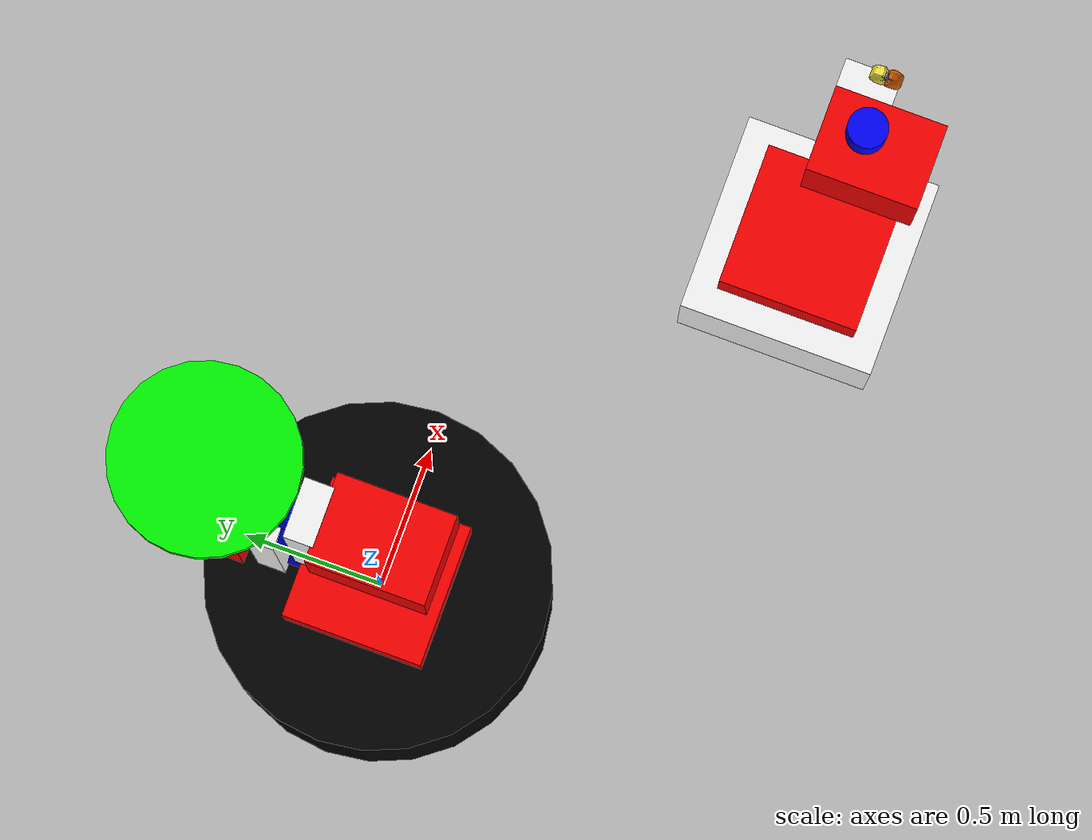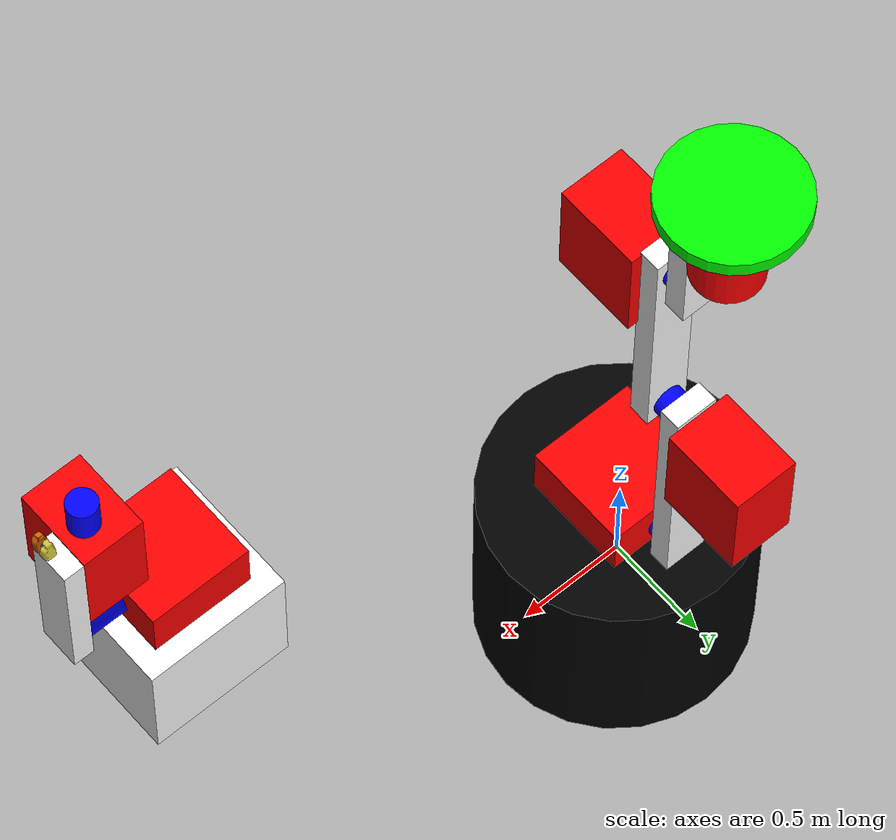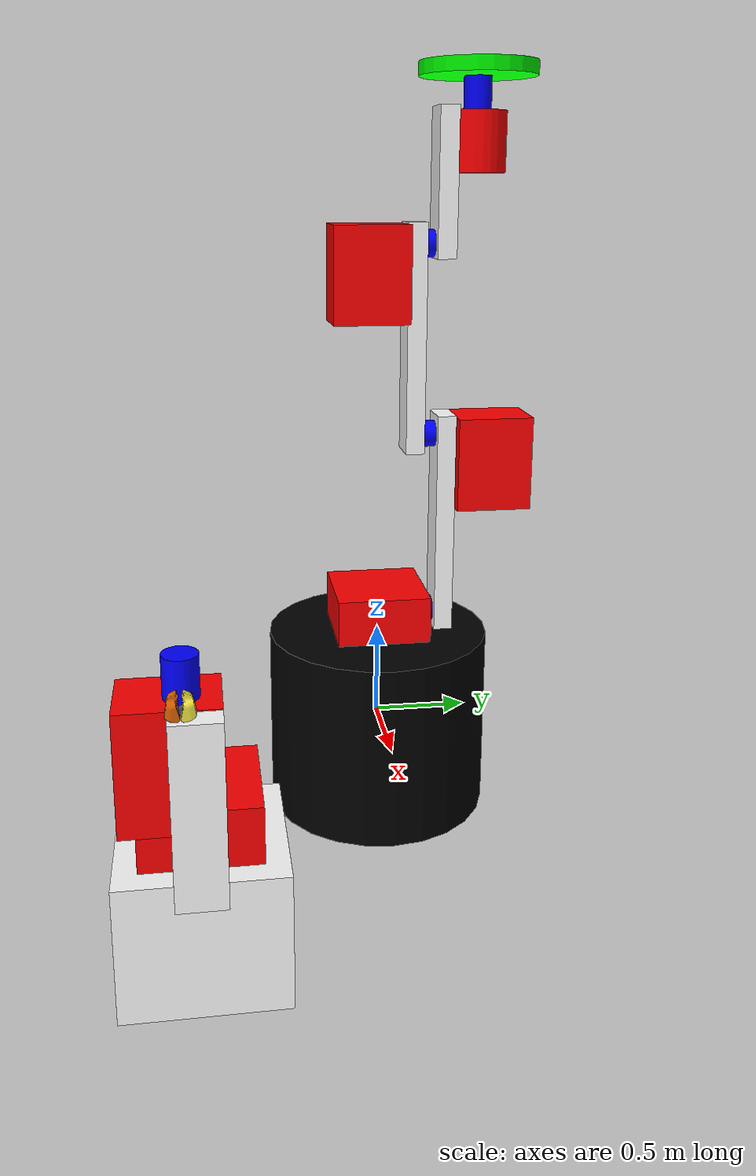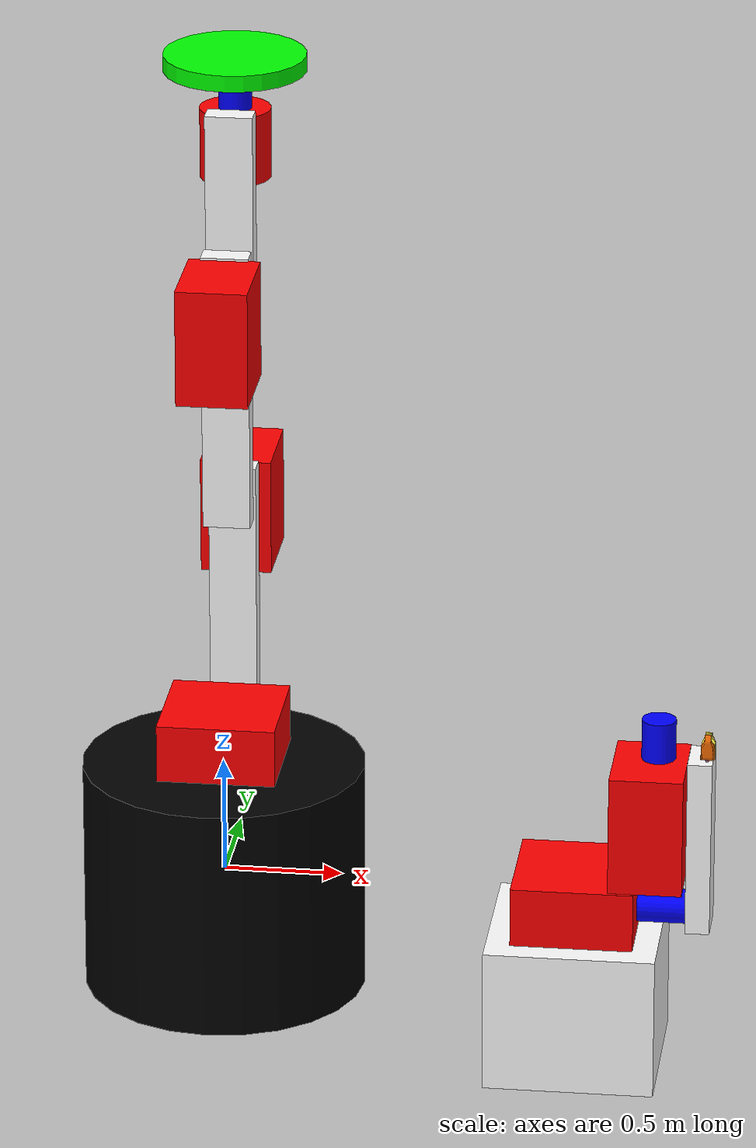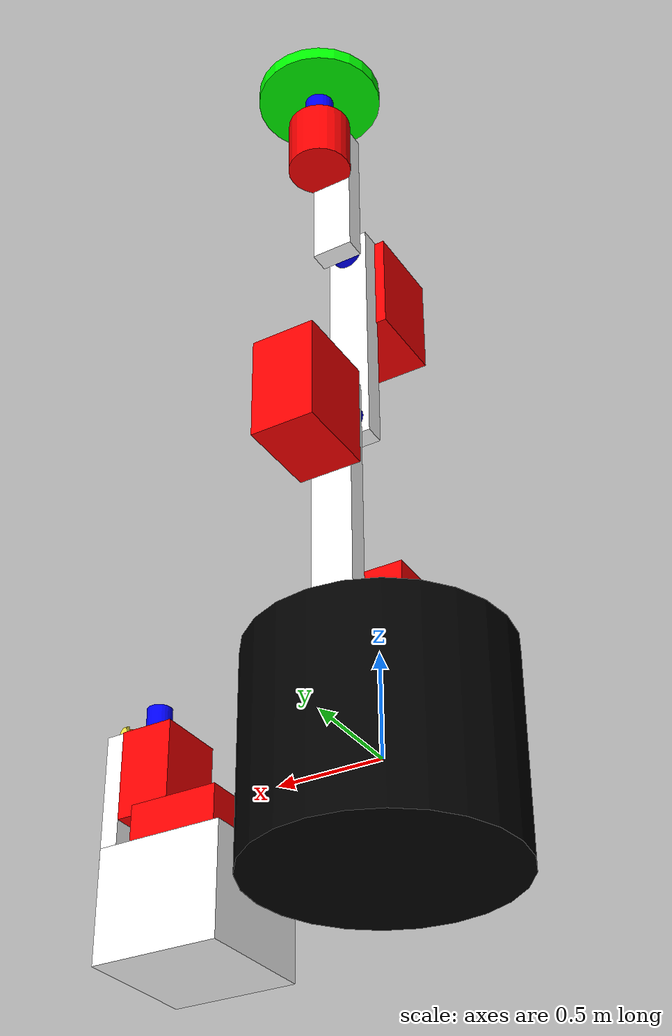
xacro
<!-- arm2.xacro:- has inertia, collision properties for links for simulation in gazebo -->
<?xml version="1.0" ?>

<robot name="arm" xmlns:xacro="http://www.ros.org/wiki/xacro">

<material name="blue">
        <color rgba="0 0 1 1"/>
    </material>
    <material name="red">
        <color rgba="1 0 0 1"/>
    </material>
    <material name="green">
        <color rgba="0 1 0 1"/>
    </material>
    <material name="black">
        <color rgba="0 0 0 1"/>
    </material>
    <material name="white">
        <color rgba="1 1 1 1"/>
    </material>

    <link name="base">
    <inertial>
	    <mass value="1"/>
	    <origin rpy="0 0 0" xyz="0 0 0"	/> 	<!--same as origin of link-->
	    <inertia ixx="0.1733" ixy="0" ixz="0" iyy="0.1733" iyz="0" izz="0.18"/>
    </inertial>
    <collision>
        <origin rpy="0 0 0" xyz="0 0 0"/>
            <geometry>
                <cylinder radius="0.6" length="1"/>
            </geometry>
            <material name="black"/>
    </collision>
        <visual>
            <origin rpy="0 0 0" xyz="0 0 0"/>
            <geometry>
                <cylinder radius="0.6" length="1"/>
            </geometry>
            <material name="black"/>
        </visual>
    </link>

    <joint name="base__servo1" type="revolute">
        <axis xyz="0 0 1" />
        <origin rpy="0 0 0" xyz="0 0 0.5"/>
        <limit effort="1000" lower="-1.57" upper="1.57" velocity="0.5" />
        <parent link="base"/>
        <child link="servo1"/>
    </joint>

    <link name="servo1">
    <inertial>
	    <mass value="0.250"/>
	    <origin rpy="0 0 0" xyz="0 0 0.1"	/> 	<!--same as origin of link-->
	    <inertia ixx="0.007833" ixy="0" ixz="0" iyy="0.007833" iyz="0" izz="0.01041" />
    </inertial>
        <collision>
            <origin rpy="0 0 0" xyz="0 0 0.1"/>
            <geometry>
                <box size="0.5 0.5 0.3"/>
            </geometry>
            <material name="red"/>
        </collision>
        <visual>
            <origin rpy="0 0 0" xyz="0 0 0.1"/>
            <geometry>
                <box size="0.5 0.5 0.3"/>
            </geometry>
            <material name="red"/>
        </visual>
    </link>

        <joint name="servo1_shaft1" type="revolute">
        <axis xyz="0 1 0" />
        <limit effort="1000" lower="-1.57" upper="1.57" velocity="0.5" />
        <origin rpy="0 0 0" xyz="0 0.15 0.1"/>
        <parent link="servo1"/>
        <child link="shaft1"/>
    </joint>

    <link name="shaft1">
    <inertial>
	    <mass value="0.050"/>
	    <origin rpy="0 0 0" xyz="0 0 0"	/> 	<!--same as origin of link-->
	    <inertia ixx="0.00041167" ixy="0" ixz="0" iyy="0.0001225" iyz="0" izz="0.00041167" />
    </inertial>
    <collision>
	<origin rpy="-1.57 0 0" xyz="0 0.1 0"/>
            <geometry>
                <cylinder radius="0.07" length="0.29"/>
            </geometry>
             <material name="blue"/>
    </collision>
        <visual>
            <origin rpy="-1.57 0 0" xyz="0 0.1 0"/>
            <geometry>
                <cylinder radius="0.07" length="0.29"/>
            </geometry>
             <material name="blue"/>
        </visual>
    </link>

    <joint name="shaft1_link1" type="fixed">
        <axis xyz="0 1 0" />
        <origin rpy="0 0 0" xyz="0 0.15 0"/>
        <parent link="shaft1"/>
        <child link="link1"/>
    </joint>

    <link name="link1">
    <inertial>
	    <mass value="0.100"/>
	    <origin rpy="0 0 0" xyz="0 0 0"	/> 	<!--same as origin of link-->
	    <inertia ixx="0.01208" ixy="0" ixz="0" iyy="0.01233" iyz="0" izz="0.00041667"/>
    </inertial>
    <collision>
	<origin rpy="0 0 0" xyz="0 0.05 0.51"/>
            <geometry>
                <box size="0.20 0.1 1.2"/>
            </geometry>
            <material name="white"/>
    </collision>
        <visual>
            <origin rpy="0 0 0" xyz="0 0.05 0.51"/>
            <geometry>
                <box size="0.20 0.1 1.2"/>
            </geometry>
            <material name="white"/>
        </visual>
    </link>

    <joint name="link1_servo2" type="fixed">
        <axis xyz="0 1 0" />
        <origin rpy="0 0 0" xyz="0 0.25 1.2"/>
        <parent link="link1"/>
        <child link="servo2"/>
    </joint>

    <link name="servo2">
    <inertial>
	    <mass value="0.250"/>
	    <origin rpy="0 0 0" xyz="0 0 0"	/> 	<!--same as origin of link-->
	    <inertia ixx="" ixy="0" ixz="0" iyy="" iyz="0" izz=""/>
    </inertial>
    <collision>
	<origin rpy="0 0 0" xyz="0 0.055 -.35"/>
            <geometry>
                <box size="0.3 0.40 0.5"/>
            </geometry>
            <material name="red"/>
    </collision>
        <visual>
            <origin rpy="0 0 0" xyz="0 0.055 -.35"/>
            <geometry>
                <box size="0.3 0.40 0.5"/>
            </geometry>
            <material name="red"/>
        </visual>
    </link>

    <joint name="servo2_shaft2" type="revolute">
        <axis xyz="0 1 0" />
        <limit effort="1000" lower="-1.57" upper="1.57" velocity="0.5" />
        <origin rpy="0 0 0" xyz="0 0.15 -0.20"/>
        <parent link="servo2"/>
        <child link="shaft2"/>
    </joint>

    <link name="shaft2">
    <inertial>
	    <mass value="0.050"/>
	    <origin rpy="0 0 0" xyz="0 0 0"	/> 	<!--same as origin of link-->
	    <inertia ixx="" ixy="0" ixz="0" iyy="" iyz="0" izz="" />
    </inertial>
    <collision>
	<origin rpy="-1.57 0 0" xyz="0 -0.40 0"/>
            <geometry>
                <cylinder radius="0.07" length="0.30"/>
            </geometry>
            <material name="blue"/>
    </collision>
        <visual>
            <origin rpy="-1.57 0 0" xyz="0 -0.40 0"/>
            <geometry>
                <cylinder radius="0.07" length="0.30"/>
            </geometry>
            <material name="blue"/>
        </visual>
    </link>

    <joint name="shaft2_link2" type="fixed">
        <axis xyz="0 1 0" />
        <origin rpy="0 0 0" xyz="0 -0.22 0"/>
        <parent link="shaft2"/>
        <child link="link2"/>
    </joint>

    <link name="link2">
    <inertial>
	    <mass value="0.100"/>
	    <origin rpy="0 0 0" xyz="0 0 0"	/> 	<!--same as origin of link-->
	    <inertia ixx="" ixy="0" ixz="0" iyy="" iyz="0" izz="" />
    </inertial>
    <collision>
	<origin rpy="0 0 0" xyz="0 -0.3 0.51"/>
            <geometry>
                <box size="0.20 0.1 1.2"/>
            </geometry>
            <material name="white"/>
    </collision>
        <visual>
            <origin rpy="0 0 0" xyz="0 -0.3 0.51"/>
            <geometry>
                <box size="0.20 0.1 1.2"/>
            </geometry>
            <material name="white"/>
        </visual>
    </link>

    <joint name="link2_servo3" type="fixed">
        <axis xyz="0 1 0" />
        <origin rpy="0 0 0" xyz="0 0 1.2"/>
        <parent link="link2"/>
        <child link="servo3"/>
    </joint>

    <link name="servo3">
    <inertial>
	    <mass value="0.250"/>
	    <origin rpy="0 0 0" xyz="0 0 0"	/> 	<!--same as origin of link-->
	    <inertia ixx="" ixy="0" ixz="0" iyy="" iyz="0" izz="" />
    </inertial>
    <collision>
	<origin rpy="0 0 0" xyz="0 -0.54 -.35"/>
            <geometry>
                <box size="0.3 0.40 0.5"/>
            </geometry>
            <material name="red"/>
    </collision>
        <visual>
            <origin rpy="0 0 0" xyz="0 -0.54 -.35"/>
            <geometry>
                <box size="0.3 0.40 0.5"/>
            </geometry>
            <material name="red"/>
        </visual>
    </link>

    <joint name="servo3_shaft3" type="revolute">
        <axis xyz="0 1 0" />
        <limit effort="1000" lower="-1.57" upper="1.57" velocity="0.5" />
        <origin rpy="0 0 0" xyz="0 0.15 -0.20"/>
        <parent link="servo3"/>
        <child link="shaft3"/>
    </joint>

    <link name="shaft3">
    <inertial>
	    <mass value="0.050"/>
	    <origin rpy="0 0 0" xyz="0 0 0"	/> 	<!--same as origin of link-->
	    <inertia ixx="" ixy="0" ixz="0" iyy="" iyz="0" izz="" />
    </inertial>
    <collision>
	<origin rpy="-1.57 0 0" xyz="0 -0.43 0"/>
            <geometry>
                <cylinder radius="0.07" length="0.30"/>
            </geometry>
            <material name="blue"/>
    </collision>
        <visual>
            <origin rpy="-1.57 0 0" xyz="0 -0.43 0"/>
            <geometry>
                <cylinder radius="0.07" length="0.30"/>
            </geometry>
            <material name="blue"/>
        </visual>
    </link>

    <joint name="shaft3_link3" type="fixed">
        <axis xyz="0 1 0" />
        <origin rpy="0 0 0" xyz="0 -0.22 0"/>
        <parent link="shaft3"/>
        <child link="link3"/>
    </joint>

    <link name="link3">
    <inertial>
	    <mass value="0.100"/>
	    <origin rpy="0 0 0" xyz="0 0 0"	/> 	<!--same as origin of link-->
	    <inertia ixx="" ixy="0" ixz="0" iyy="" iyz="0" izz="" />
    </inertial>
    <collision>
	<origin rpy="0 0 0" xyz="0 -0.08 0.3"/>
            <geometry>
                <box size="0.20 0.1 0.75"/>
            </geometry>
            <material name="white"/>
    </collision>
        <visual>
            <origin rpy="0 0 0" xyz="0 -0.08 0.3"/>
            <geometry>
                <box size="0.20 0.1 0.75"/>
            </geometry>
            <material name="white"/>
        </visual>
    </link>

    <joint name="link3_motor1" type="fixed">
        <axis xyz="0 0 1" />
        <origin rpy="0 0 0" xyz="0 -0.22 0"/>
        <parent link="link3"/>
        <child link="motor1"/>
    </joint>

    <link name="motor1">
    <inertial>
	    <mass value="0.200"/>
	    <origin rpy="0 0 0" xyz="0 0 0"	/> 	<!--same as origin of link-->
	    <inertia ixx="" ixy="0" ixz="0" iyy="" iyz="0" izz="" />
    </inertial>
    <collision>
	 <origin rpy="0 0 0" xyz="0 0.3 0.5"/>
            <geometry>
                <cylinder radius="0.15" length="0.30"/>
            </geometry>
            <material name="red"/>
    </collision>
        <visual>
            <origin rpy="0 0 0" xyz="0 0.3 0.5"/>
            <geometry>
                <cylinder radius="0.15" length="0.30"/>
            </geometry>
            <material name="red"/>
        </visual>
    </link>

    <joint name="motor1_shaft4" type="revolute">
        <axis xyz="0 0 1" />
        <limit effort="1000" lower="-1.57" upper="1.57" velocity="0.5" />
        <origin rpy="0 0 0" xyz="0 0.3 -0.20"/>
        <parent link="motor1"/>
        <child link="shaft4"/>
    </joint>

    <link name="shaft4">
    <inertial>
	    <mass value="0.050"/>
	    <origin rpy="0 0 0" xyz="0 0 0"	/> 	<!--same as origin of link-->
	    <inertia ixx="" ixy="0" ixz="0" iyy="" iyz="0" izz="" />
    </inertial>
    <collision>
	<origin rpy="0 0 0" xyz="0 0 .9"/>
            <geometry>
                <cylinder radius="0.07" length="0.30"/>
            </geometry>
            <material name="blue"/>
    </collision>
        <visual>
            <origin rpy="0 0 0" xyz="0 0 .9"/>
            <geometry>
                <cylinder radius="0.07" length="0.30"/>
            </geometry>
            <material name="blue"/>
        </visual>
    </link>

    <joint name="shaft4_brush" type="fixed">
        <axis xyz="0 0 1" />
        <origin rpy="0 0 0" xyz="0 0 0"/>
        <parent link="shaft4"/>
        <child link="brush"/>
    </joint>

    <link name="brush">
    <inertial>
	    <mass value="0.100"/>
	    <origin rpy="0 0 0" xyz="0 0 0"	/> 	<!--same as origin of link-->
	    <inertia ixx="" ixy="0" ixz="0" iyy="" iyz="0" izz="" />
    </inertial>
    <collision>
	<origin rpy="0 0 0" xyz="0 0 1.05"/>
            <geometry>
                <cylinder radius="0.3" length="0.07"/>
            </geometry>
            <material name="green"/>
    </collision>
        <visual>
            <origin rpy="0 0 0" xyz="0 0 1.05"/>
            <geometry>
                <cylinder radius="0.3" length="0.07"/>
            </geometry>
            <material name="green"/>
        </visual>
    </link>

<!--robot arm 2 description from here-->
    <joint name="base__base2" type="fixed">
        <axis xyz="1 0 0" />
        <origin rpy="0 0 0" xyz="0 0 0"/>
        <parent link="base"/>
        <child link="base2"/>
    </joint>

    <link name="base2">
    <inertial>
	    <mass value="0.600"/>
	    <origin rpy="0 0 0" xyz="0 0 0"	/> 	<!--same as origin of link-->
	    <inertia ixx="" ixy="0" ixz="0" iyy="" iyz="0" izz="" />
    </inertial>
    <collision>
	<origin rpy="0 0 0" xyz="1.6 -1 0"/>
            <geometry>
                <box size=".7 .7 .6"/>
            </geometry>
            <material name="white"/>
    </collision>
        <visual>
            <origin rpy="0 0 0" xyz="1.6 -1 0"/>
            <geometry>
                <box size=".7 .7 .6"/>
            </geometry>
            <material name="white"/>
        </visual>
    </link>

    <joint name="base2__servo2.1" type="revolute">
        <axis xyz="0 0 1" />
        <origin rpy="0 0 0" xyz="1.6 -1 0.3"/>
        <limit effort="1000" lower="-1.57" upper="1.57" velocity="0.5" />
        <parent link="base2"/>
        <child link="servo2.1"/>
    </joint>

    <link name="servo2.1">
    <inertial>
	    <mass value="0.250"/>
	    <origin rpy="0 0 0" xyz="0 0 0"	/> 	<!--same as origin of link-->
	    <inertia ixx="" ixy="0" ixz="0" iyy="" iyz="0" izz="" />
    </inertial>
    <collision>
	<origin rpy="0 0 0" xyz="0 0 0.1"/>
            <geometry>
                <box size="0.5 0.5 0.3"/>
            </geometry>
            <material name="red"/>
    </collision>
        <visual>
            <origin rpy="0 0 0" xyz="0 0 0.1"/>
            <geometry>
                <box size="0.5 0.5 0.3"/>
            </geometry>
            <material name="red"/>
        </visual>
    </link>

    <joint name="servo2.1__shaft2.1" type="revolute">
        <axis xyz="1 0 0" />
        <origin rpy="0 0 0" xyz="0.4 0 0.10"/>
        <limit effort="1000" lower="-1.57" upper="1.57" velocity="0.5" />
        <parent link="servo2.1"/>
        <child link="shaft2.1"/>
    </joint>

    <link name="shaft2.1">
    <inertial>
	    <mass value="0.050"/>
	    <origin rpy="0 0 0" xyz="0 0 0"	/> 	<!--same as origin of link-->
	    <inertia ixx="" ixy="0" ixz="0" iyy="" iyz="0" izz="" />
    </inertial>
    <collision>
	<origin rpy="0 -1.57 0" xyz="-0.1 0 0"/>
            <geometry>
               <cylinder radius="0.07" length="0.3"/>
            </geometry>
            <material name="blue"/>
    </collision>
        <visual>
           <origin rpy="0 -1.57 0" xyz="-0.1 0 0"/>
            <geometry>
               <cylinder radius="0.07" length="0.3"/>
            </geometry>
            <material name="blue"/>
        </visual>
    </link>

    <joint name="shaft2.1_link2.1" type="fixed">
        <axis xyz="1 0 0" />
        <origin rpy="0 0 0" xyz="0.15 0 0"/>
        <parent link="shaft2.1"/>
        <child link="link2.1"/>
    </joint>

    <link name="link2.1">
    <inertial>
	    <mass value="0.100"/>
	    <origin rpy="0 0 0" xyz="0 0 0"	/> 	<!--same as origin of link-->
	    <inertia ixx="" ixy="0" ixz="0" iyy="" iyz="0" izz="" />
    </inertial>
    <collision>
	<origin rpy="0 0 0" xyz="-0.05 0 0.3"/>
            <geometry>
                <box size="0.1 0.2 0.75"/>
            </geometry>
            <material name="white"/>
    </collision>
        <visual>
            <origin rpy="0 0 0" xyz="-0.05 0 0.3"/>
            <geometry>
                <box size="0.1 0.2 0.75"/>
            </geometry>
            <material name="white"/>
        </visual>
    </link>

    <joint name="link2.1_servo2.2" type="fixed">
        <axis xyz="0 1 0" />
        <origin rpy="0 0 0" xyz="0 0.25 1.2"/>
        <parent link="link2.1"/>
        <child link="servo2.2"/>
    </joint>

    <link name="servo2.2">
    <inertial>
	    <mass value="0.250"/>
	    <origin rpy="0 0 0" xyz="0 0 0"	/> 	<!--same as origin of link-->
	    <inertia ixx="" ixy="0" ixz="0" iyy="" iyz="0" izz="" />
    </inertial>
    <collision>
	<origin rpy="0 0 0" xyz="-0.25 -0.35 -0.77"/>
            <geometry>
                <box size="0.3 0.40 0.5"/>
            </geometry>
            <material name="red"/>
    </collision>
        <visual>
            <origin rpy="0 0 0" xyz="-0.25 -0.35 -0.77"/>
            <geometry>
                <box size="0.3 0.40 0.5"/>
            </geometry>
            <material name="red"/>
        </visual>
    </link>

    <joint name="servo2.2__shaft2.2" type="revolute">
        <axis xyz="0 0 1" />
        <origin rpy="0 0 0" xyz="-0.22 -0.3 -0.5"/>
        <limit effort="1000" lower="-1.57" upper="1.57" velocity="0.5" />
        <parent link="servo2.2"/>
        <child link="shaft2.2"/>
    </joint>

    <link name="shaft2.2">
    <inertial>
	    <mass value="0.050"/>
	    <origin rpy="0 0 0" xyz="0 0 0"	/> 	<!--same as origin of link-->
	    <inertia ixx="" ixy="0" ixz="0" iyy="" iyz="0" izz="" />
    </inertial>
    <collision>
    <origin rpy="0 0 0" xyz="0 0 0"/>
            <geometry>
               <cylinder radius="0.07" length="0.3"/>
            </geometry>
            <material name="blue"/>
    </collision>
        <visual>
           <origin rpy="0 0 0" xyz="0 0 0"/>
            <geometry>
               <cylinder radius="0.07" length="0.3"/>
            </geometry>
            <material name="blue"/>
        </visual>
    </link>

    <joint name="left_gripper_joint" type="revolute">
    <axis xyz="1 0 0"/>
   3 <limit effort="1000.0" lower="0.0" upper="-0.548" velocity="0.5"/>
    <origin rpy="0 0 0" xyz="0.2 0.01 0"/>
    <parent link="shaft2.2"/>
    <child link="left_gripper"/>
  </joint>

    <link name="left_gripper">
    <inertial>
	    <mass value="0.075"/>
	    <origin rpy="0 0 0" xyz="0 0 0"	/> 	<!--same as origin of link-->
	    <inertia ixx="" ixy="0" ixz="0" iyy="" iyz="0" izz="" />
    </inertial>
    <collision>
	<origin rpy="0 -1.57 0" xyz="0 0 0"/>
      <geometry>
        <mesh filename="package://urdf_tutorial/meshes/l_finger.dae"/>
      </geometry>
    </collision>
    <visual>
      <origin rpy="0 -1.57 0" xyz="0 0 0"/>
      <geometry>
        <mesh filename="package://urdf_tutorial/meshes/l_finger.dae"/>
      </geometry>
    </visual>
  </link>

  <joint name="left_tip_joint" type="fixed">
    <parent link="left_gripper"/>
    <child link="left_tip"/>
  </joint>

  <link name="left_tip">
  <inertial>
	    <mass value="0.020"/>
	    <origin rpy="0 0 0" xyz="0 0 0"	/> 	<!--same as origin of link-->
	    <inertia ixx="" ixy="0" ixz="0" iyy="" iyz="0" izz="" />
    </inertial>
    <collision>
    <origin rpy="0.0 -1.57 0" xyz="0 0 0.01"/>
      <geometry>
        <mesh filename="package://urdf_tutorial/meshes/l_finger_tip.dae"/>
      </geometry>
    </collision>
    <visual>
      <origin rpy="0.0 -1.57 0" xyz="0 0 0.01"/>
      <geometry>
        <mesh filename="package://urdf_tutorial/meshes/l_finger_tip.dae"/>
      </geometry>
    </visual>
  </link>

  <joint name="right_gripper_joint" type="revolute">
  <axis xyz="1 0 0"/>
   <limit effort="1000.0" lower="0.0" upper="0.548" velocity="0.5"/>
    <origin rpy="0 0 0" xyz="0.2 -0.01 0"/>
    <parent link="shaft2.2"/>
    <child link="right_gripper"/>
  </joint>

  <link name="right_gripper">
  <inertial>
	    <mass value="0.075"/>
	    <origin rpy="0 0 0" xyz="0 0 0"	/> 	<!--same as origin of link-->
	    <inertia ixx="" ixy="0" ixz="0" iyy="" iyz="0" izz="" />
    </inertial>
    <collision>
    <origin rpy="-3.1415 -1.57 0" xyz="0 0 0"/>
      <geometry>
        <mesh filename="package://urdf_tutorial/meshes/l_finger.dae"/>
      </geometry>
    </collision>
    <visual>
      <origin rpy="-3.1415 -1.57 0" xyz="0 0 0"/>
      <geometry>
        <mesh filename="package://urdf_tutorial/meshes/l_finger.dae"/>
      </geometry>
    </visual>
  </link>

  <joint name="right_tip_joint" type="fixed">
    <parent link="right_gripper"/>
    <child link="right_tip"/>
  </joint>

  <link name="right_tip">
  <inertial>
	    <mass value="0.020"/>
	    <origin rpy="0 0 0" xyz="0 0 0"	/> 	<!--same as origin of link-->
	    <inertia ixx="" ixy="0" ixz="0" iyy="" iyz="0" izz="" />
    </inertial>
    <collision>
	<origin rpy="-3.1415 -1.57 0" xyz="0 0 0.01"/>
      <geometry>
        <mesh filename="package://urdf_tutorial/meshes/l_finger_tip.dae"/>
      </geometry>
    </collision>
    <visual>
      <origin rpy="-3.1415 -1.57 0" xyz="0 0 0.01"/>
      <geometry>
        <mesh filename="package://urdf_tutorial/meshes/l_finger_tip.dae"/>
      </geometry>
    </visual>
  </link>

  <!-- gazebo plugin -->
   <gazebo>
    <plugin name="gazebo_ros_control" filename="libgazebo_ros_control.so">
    </plugin>
   </gazebo>

</robot>
